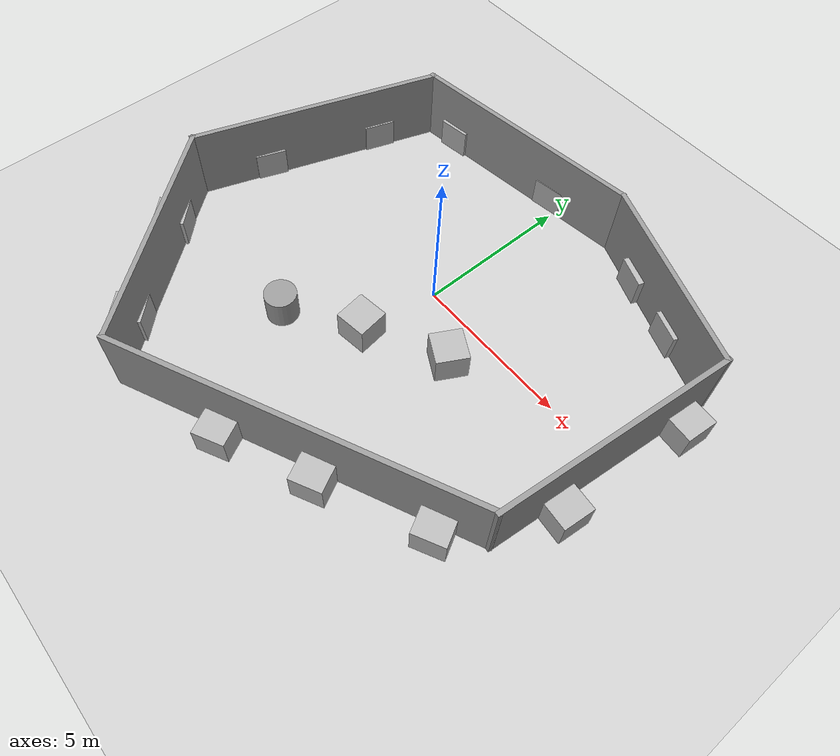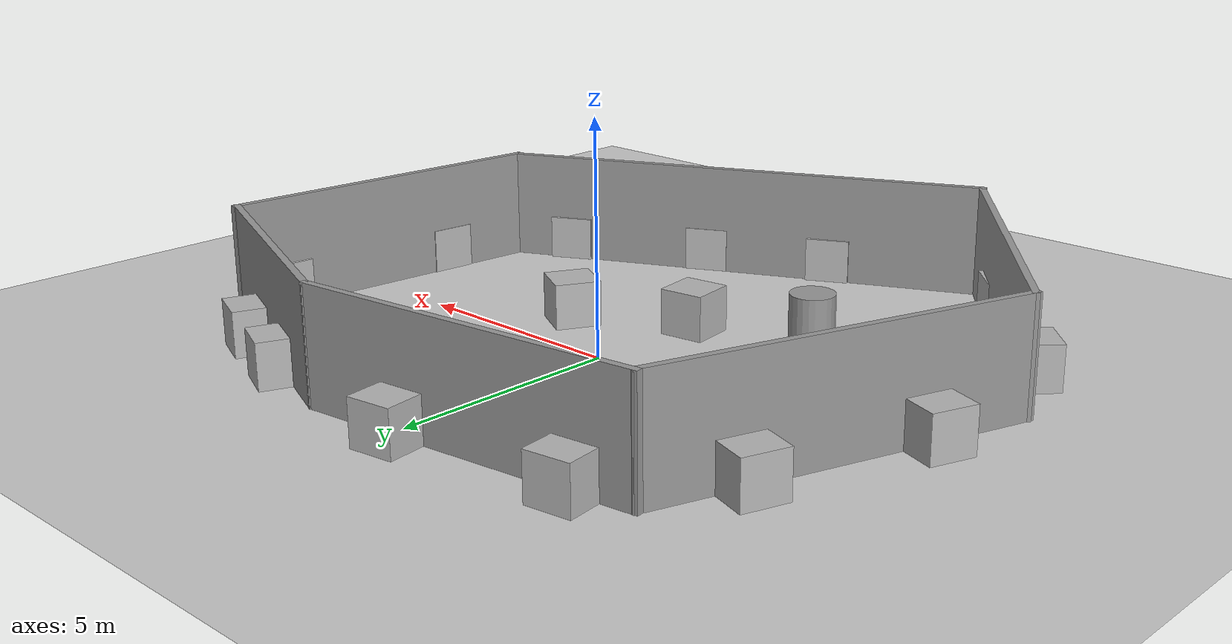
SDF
<sdf version="1.6">
 <world name="default">
  <light name="sun" type="directional">
   <pose>0 0 10 0 -0 0</pose>
   <diffuse>0.8 0.8 0.8 1</diffuse>
   <specular>0.2 0.2 0.2 1</specular>
   <attenuation>
    <range>1000</range>
    <constant>0.9</constant>
    <linear>0.01</linear>
    <quadratic>0.001</quadratic>
   </attenuation>
   <direction>-0.5 0.1 -0.9</direction>
  </light>
  <model name="ground_plane">
   <static>1</static>
   <link name="link">
    <collision name="collision">
     <geometry><plane><normal>0 0 1</normal><size>100 100</size></plane></geometry>
     <surface>
      <contact><collide_bitmask>65535</collide_bitmask></contact>
      <friction><ode><mu>100</mu><mu2>50</mu2></ode></friction>
     </surface>
    </collision>
    <visual name="visual">
     <cast_shadows>0</cast_shadows>
     <geometry><plane><normal>0 0 1</normal><size>100 100</size></plane></geometry>
     <material>
      <script><uri>file://media/materials/scripts/gazebo.material</uri><name>Gazebo/Grey</name></script>
     </material>
    </visual>
   </link>
  </model>
  <gravity>0 0 -9.8</gravity>
  <magnetic_field>6e-06 2.3e-05 -4.2e-05</magnetic_field>
  <atmosphere type="adiabatic"/>
  <physics name="default_physics" default="0" type="ode">
   <max_step_size>0.001</max_step_size>
   <real_time_factor>1</real_time_factor>
   <real_time_update_rate>1000</real_time_update_rate>
  </physics>
  <scene><ambient>0.4 0.4 0.4 1</ambient><background>0.7 0.7 0.7 1</background><shadows>1</shadows></scene>
  <audio><device>default</device></audio>
  <spherical_coordinates>
   <surface_model>EARTH_WGS84</surface_model>
   <latitude_deg>0</latitude_deg>
   <longitude_deg>0</longitude_deg>
   <elevation>0</elevation>
   <heading_deg>0</heading_deg>
  </spherical_coordinates>
  <model name="world_walls">
   <pose>-0.253225 -1.67965 0 0 -0 0</pose>
   <link name="Wall_10">
    <collision name="Wall_10_Collision">
     <geometry><box><size>11.4246 0.15 2.5</size></box></geometry>
     <pose>0 0 1.25 0 -0 0</pose>
    </collision>
    <visual name="Wall_10_Visual">
     <pose>0 0 1.25 0 -0 0</pose>
     <geometry><box><size>11.4246 0.15 2.5</size></box></geometry>
     <material>
      <script><uri>file://media/materials/scripts/gazebo.material</uri><name>Gazebo/Grey</name></script>
      <ambient>1 1 1 1</ambient>
     </material>
     <meta><layer>0</layer></meta>
    </visual>
    <pose>1.96996 -4.77128 0 0 -0 0.442446</pose>
   </link>
   <link name="Wall_11">
    <collision name="Wall_11_Collision">
     <geometry><box><size>7.65878 0.15 2.5</size></box></geometry>
     <pose>0 0 1.25 0 -0 0</pose>
    </collision>
    <visual name="Wall_11_Visual">
     <pose>0 0 1.25 0 -0 0</pose>
     <geometry><box><size>7.65878 0.15 2.5</size></box></geometry>
     <material>
      <script><uri>file://media/materials/scripts/gazebo.material</uri><name>Gazebo/Grey</name></script>
      <ambient>1 1 1 1</ambient>
     </material>
     <meta><layer>0</layer></meta>
    </visual>
    <pose>7.45169 1.33624 0 0 -0 1.46746</pose>
   </link>
   <link name="Wall_13">
    <collision name="Wall_13_Collision">
     <geometry><box><size>7.72754 0.15 2.5</size></box></geometry>
     <pose>0 0 1.25 0 -0 0</pose>
    </collision>
    <visual name="Wall_13_Visual">
     <pose>0 0 1.25 0 -0 0</pose>
     <geometry><box><size>7.72754 0.15 2.5</size></box></geometry>
     <material>
      <script><uri>file://media/materials/scripts/gazebo.material</uri><name>Gazebo/Grey</name></script>
      <ambient>1 1 1 1</ambient>
     </material>
     <meta><layer>0</layer></meta>
    </visual>
    <pose>-1.47129 6.7323 0 0 -0 -3.02113</pose>
   </link>
   <link name="Wall_15">
    <collision name="Wall_15_Collision">
     <geometry><box><size>6.0659 0.15 2.5</size></box></geometry>
     <pose>0 0 1.25 0 -0 0</pose>
    </collision>
    <visual name="Wall_15_Visual">
     <pose>0 0 1.25 0 -0 0</pose>
     <geometry><box><size>6.0659 0.15 2.5</size></box></geometry>
     <material>
      <script><uri>file://media/materials/scripts/gazebo.material</uri><name>Gazebo/Grey</name></script>
      <ambient>1 1 1 1</ambient>
     </material>
     <meta><layer>0</layer></meta>
    </visual>
    <pose>5.08472 6.10887 0 0 -0 -0.373296</pose>
   </link>
   <link name="Wall_8">
    <collision name="Wall_8_Collision">
     <geometry><box><size>8.2991 0.15 2.5</size></box></geometry>
     <pose>0 0 1.25 0 -0 0</pose>
    </collision>
    <visual name="Wall_8_Visual">
     <pose>0 0 1.25 0 -0 0</pose>
     <geometry><box><size>8.2991 0.15 2.5</size></box></geometry>
     <material>
      <script><uri>file://media/materials/scripts/gazebo.material</uri><name>Gazebo/Grey</name></script>
      <ambient>1 1 1 1</ambient>
     </material>
     <meta><layer>0</layer></meta>
    </visual>
    <pose>-6.51137 2.42193 0 0 -0 -1.90051</pose>
   </link>
   <link name="Wall_9">
    <collision name="Wall_9_Collision">
     <geometry><box><size>7.58169 0.15 2.5</size></box></geometry>
     <pose>0 0 1.25 0 -0 0</pose>
    </collision>
    <visual name="Wall_9_Visual">
     <pose>0 0 1.25 0 -0 0</pose>
     <geometry><box><size>7.58169 0.15 2.5</size></box></geometry>
     <material>
      <script><uri>file://media/materials/scripts/gazebo.material</uri><name>Gazebo/Grey</name></script>
      <ambient>1 1 1 1</ambient>
     </material>
     <meta><layer>0</layer></meta>
    </visual>
    <pose>-5.47755 -4.26856 0 0 -0 -0.885055</pose>
   </link>
   <static>1</static>
  </model>
  <model name="apriltag1">
   <pose>-4.26372 4.57575 0.5 0 0 -1.43563</pose>
   <static>1</static>
   <link name="link">
    <collision name="collision">
     <pose>-0.5 0 0 0 -0 0</pose>
     <geometry><box><size>1 1 1</size></box></geometry>
    </collision>
    <visual name="visual">
     <pose>-0.5 0 0 0 -0 0</pose>
     <geometry><mesh><uri>model://apriltag_1/meshes/aptag_1.dae</uri></mesh></geometry>
    </visual>
   </link>
  </model>
  <model name="apriltag2">
   <pose>-0.34402 5.13106 0.5 0 0 -1.43072</pose>
   <static>1</static>
   <link name="link">
    <collision name="collision">
     <pose>-0.5 0 0 0 -0 0</pose>
     <geometry><box><size>1 1 1</size></box></geometry>
    </collision>
    <visual name="visual">
     <pose>-0.5 0 0 0 -0 0</pose>
     <geometry><mesh><uri>model://apriltag_2/meshes/aptag_2.dae</uri></mesh></geometry>
    </visual>
   </link>
  </model>
  <model name="apriltag3">
   <pose>-0.277043 -3.02723 0.5 0 0 -1.43791</pose>
   <static>1</static>
   <link name="link">
    <collision name="collision">
     <pose>-0.5 0 0 0 -0 0</pose>
     <geometry><box><size>1 1 1</size></box></geometry>
    </collision>
    <visual name="visual">
     <pose>-0.5 0 0 0 -0 0</pose>
     <geometry><mesh><uri>model://apriltag_3/meshes/aptag_3.dae</uri></mesh></geometry>
    </visual>
   </link>
  </model>
  <model name="unit_cylinder">
   <pose>-2.43533 -3.9234 0.499996 3e-06 1e-06 -0</pose>
   <link name="link">
    <inertial>
     <mass>1</mass>
     <inertia><ixx>0.145833</ixx><ixy>0</ixy><ixz>0</ixz><iyy>0.145833</iyy><iyz>0</iyz><izz>0.125</izz></inertia>
    </inertial>
    <collision name="collision">
     <geometry><cylinder><radius>0.5</radius><length>1</length></cylinder></geometry>
    </collision>
    <visual name="visual">
     <geometry><cylinder><radius>0.5</radius><length>1</length></cylinder></geometry>
     <material>
      <script><name>Gazebo/Grey</name><uri>file://media/materials/scripts/gazebo.material</uri></script>
     </material>
    </visual>
   </link>
  </model>
  <model name="apriltag4">
   <pose>3.5732 4.64614 0.5 0 0 -1.95922</pose>
   <static>1</static>
   <link name="link">
    <collision name="collision">
     <pose>-0.5 0 0 0 -0 0</pose>
     <geometry><box><size>1 1 1</size></box></geometry>
    </collision>
    <visual name="visual">
     <pose>-0.5 0 0 0 -0 0</pose>
     <geometry><mesh><uri>model://apriltag_4/meshes/aptag_4.dae</uri></mesh></geometry>
    </visual>
   </link>
  </model>
  <model name="apriltag5">
   <pose>5.48961 3.93451 0.5 0 0 -1.94227</pose>
   <static>1</static>
   <link name="link">
    <collision name="collision">
     <pose>-0.5 0 0 0 -0 0</pose>
     <geometry><box><size>1 1 1</size></box></geometry>
    </collision>
    <visual name="visual">
     <pose>-0.5 0 0 0 -0 0</pose>
     <geometry><mesh><uri>model://apriltag_5/meshes/aptag_5.dae</uri></mesh></geometry>
    </visual>
   </link>
  </model>
  <model name="apriltag6">
   <pose>7.31594 2.24767 0.5 0 -0 3.0428</pose>
   <static>1</static>
   <link name="link">
    <collision name="collision">
     <pose>-0.5 0 0 0 -0 0</pose>
     <geometry><box><size>1 1 1</size></box></geometry>
    </collision>
    <visual name="visual">
     <pose>-0.5 0 0 0 -0 0</pose>
     <geometry><mesh><uri>model://apriltag_6/meshes/aptag_6.dae</uri></mesh></geometry>
    </visual>
   </link>
  </model>
  <model name="apriltag7">
   <pose>6.92164 -2.02032 0.5 0 -0 3.03477</pose>
   <static>1</static>
   <link name="link">
    <collision name="collision">
     <pose>-0.5 0 0 0 -0 0</pose>
     <geometry><box><size>1 1 1</size></box></geometry>
    </collision>
    <visual name="visual">
     <pose>-0.5 0 0 0 -0 0</pose>
     <geometry><mesh><uri>model://apriltag_7/meshes/aptag_7.dae</uri></mesh></geometry>
    </visual>
   </link>
  </model>
  <model name="apriltag8">
   <pose>5.45581 -4.52046 0.5 0 -0 2.05175</pose>
   <static>1</static>
   <link name="link">
    <collision name="collision">
     <pose>-0.5 0 0 0 -0 0</pose>
     <geometry><box><size>1 1 1</size></box></geometry>
    </collision>
    <visual name="visual">
     <pose>-0.5 0 0 0 -0 0</pose>
     <geometry><mesh><uri>model://apriltag_8/meshes/aptag_8.dae</uri></mesh></geometry>
    </visual>
   </link>
  </model>
  <model name="apriltag9">
   <pose>2.39585 -6.02794 0.5 0 -0 2.04225</pose>
   <static>1</static>
   <link name="link">
    <collision name="collision">
     <pose>-0.5 0 0 0 -0 0</pose>
     <geometry><box><size>1 1 1</size></box></geometry>
    </collision>
    <visual name="visual">
     <pose>-0.5 0 0 0 -0 0</pose>
     <geometry><mesh><uri>model://apriltag_9/meshes/aptag_9.dae</uri></mesh></geometry>
    </visual>
   </link>
  </model>
  <model name="apriltag10">
   <pose>-0.287203 -7.24449 0.5 0 -0 2.04805</pose>
   <static>1</static>
   <link name="link">
    <collision name="collision">
     <pose>-0.5 0 0 0 -0 0</pose>
     <geometry><box><size>1 1 1</size></box></geometry>
    </collision>
    <visual name="visual">
     <pose>-0.5 0 0 0 -0 0</pose>
     <geometry><mesh><uri>model://apriltag_10/meshes/aptag_10.dae</uri></mesh></geometry>
    </visual>
   </link>
  </model>
  <model name="apriltag11">
   <pose>-4.49118 -7.26022 0.5 0 -0 0.776308</pose>
   <static>1</static>
   <link name="link">
    <collision name="collision">
     <pose>-0.5 0 0 0 -0 0</pose>
     <geometry><box><size>1 1 1</size></box></geometry>
    </collision>
    <visual name="visual">
     <pose>-0.5 0 0 0 -0 0</pose>
     <geometry><mesh><uri>model://apriltag_11/meshes/aptag_11.dae</uri></mesh></geometry>
    </visual>
   </link>
  </model>
  <model name="apriltag12">
   <pose>-7.19468 -0.914421 0.5 0 0 -0.353474</pose>
   <static>1</static>
   <link name="link">
    <collision name="collision">
     <pose>-0.5 0 0 0 -0 0</pose>
     <geometry><box><size>1 1 1</size></box></geometry>
    </collision>
    <visual name="visual">
     <pose>-0.5 0 0 0 -0 0</pose>
     <geometry><mesh><uri>model://apriltag_12/meshes/aptag_12.dae</uri></mesh></geometry>
    </visual>
   </link>
  </model>
  <model name="apriltag13">
   <pose>-5.95884 2.71397 0.5 0 0 -0.332</pose>
   <static>1</static>
   <link name="link">
    <collision name="collision">
     <pose>-0.5 0 0 0 -0 0</pose>
     <geometry><box><size>1 1 1</size></box></geometry>
    </collision>
    <visual name="visual">
     <pose>-0.5 0 0 0 -0 0</pose>
     <geometry><mesh><uri>model://apriltag_13/meshes/aptag_13.dae</uri></mesh></geometry>
    </visual>
   </link>
  </model>
  <model name="apriltag14">
   <pose>-6.83915 -4.37938 0.5 0 -0 0.775933</pose>
   <static>1</static>
   <link name="link">
    <collision name="collision">
     <pose>-0.5 0 0 0 -0 0</pose>
     <geometry><box><size>1 1 1</size></box></geometry>
    </collision>
    <visual name="visual">
     <pose>-0.5 0 0 0 -0 0</pose>
     <geometry><mesh><uri>model://apriltag_14/meshes/aptag_14.dae</uri></mesh></geometry>
    </visual>
   </link>
  </model>
  <model name="apriltag15">
   <pose>2.50221 -1.5153 0.5 0 0 -0.497782</pose>
   <static>1</static>
   <link name="link">
    <collision name="collision">
     <pose>-0.5 0 0 0 -0 0</pose>
     <geometry><box><size>1 1 1</size></box></geometry>
    </collision>
    <visual name="visual">
     <pose>-0.5 0 0 0 -0 0</pose>
     <geometry><mesh><uri>model://apriltag_15/meshes/aptag_15.dae</uri></mesh></geometry>
    </visual>
   </link>
  </model>
 </world>
</sdf>
